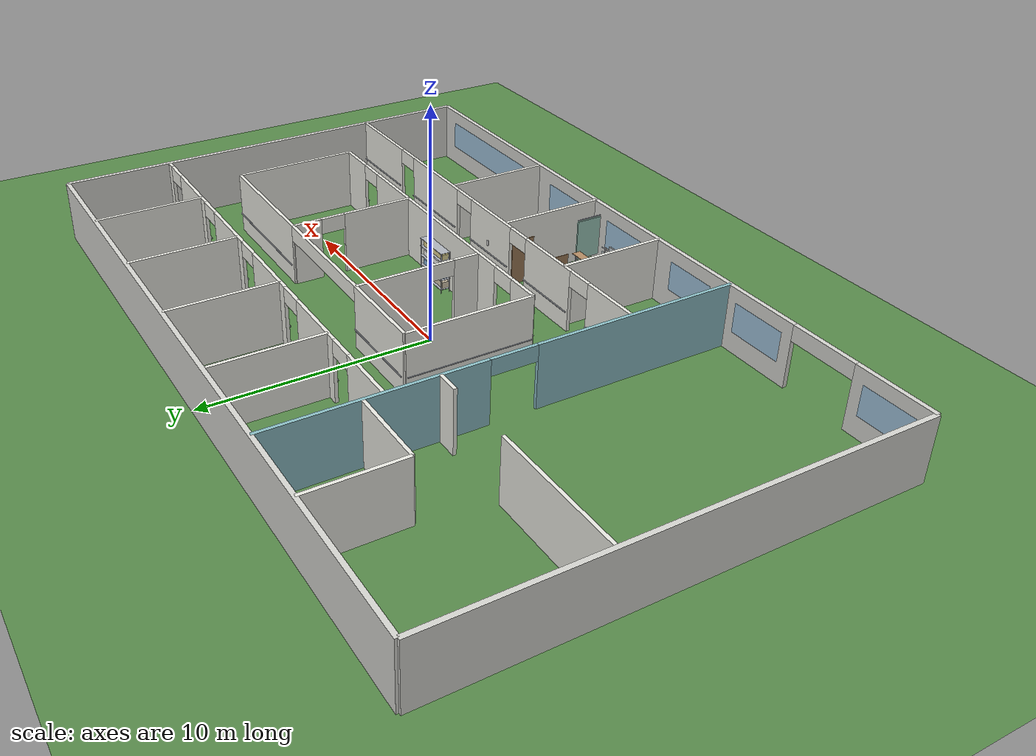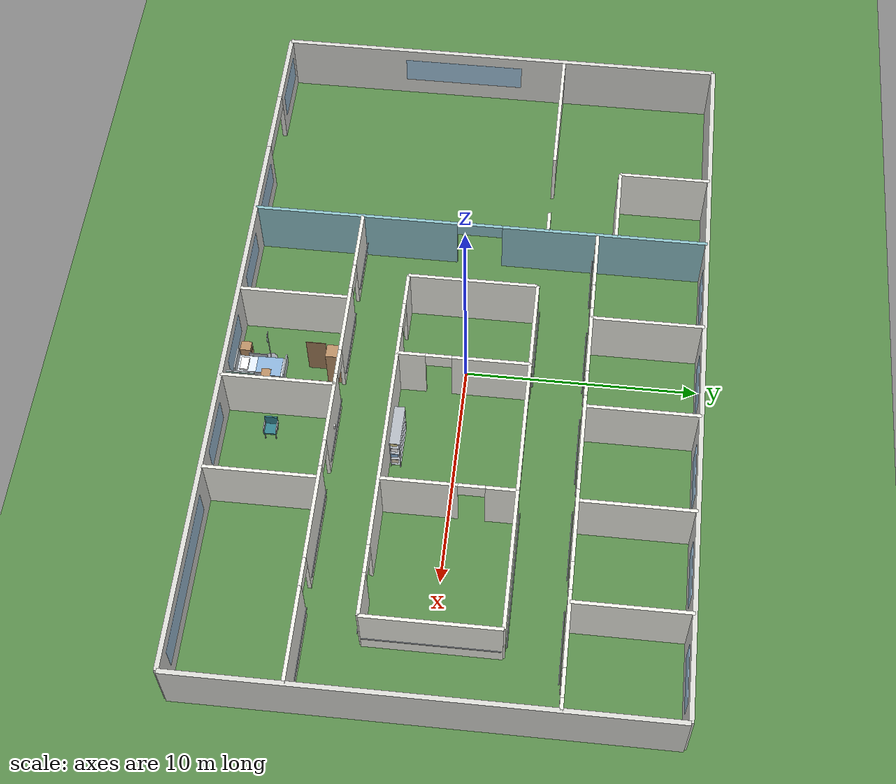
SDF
<sdf version="1.6">
 <world name="hospital">
  <include><uri>model://sun</uri></include>
  <model name="ground_plane">
   <static>true</static>
   <link name="link">
    <collision name="collision">
     <geometry><plane><normal>0 0 1</normal><size>100 100</size></plane></geometry>
     <surface>
      <contact><collide_bitmask>0xffff</collide_bitmask></contact>
      <friction><ode><mu>100</mu><mu2>50</mu2></ode></friction>
     </surface>
    </collision>
    <visual name="visual">
     <cast_shadows>false</cast_shadows>
     <geometry><plane><normal>0 0 1</normal><size>100 100</size></plane></geometry>
     <material>
      <ambient>0.35 0.55 0.3 1</ambient>
      <diffuse>0.35 0.55 0.3 1</diffuse>
      <specular>0 0 0 1</specular>
     </material>
    </visual>
   </link>
  </model>
  <model name="hospital_walls">
   <static>true</static>
   <link name="link">
    <collision name="c0">
     <pose>-14.25 -10 1.4 0 0 0</pose>
     <geometry><box><size>3.5 0.2 2.8</size></box></geometry>
    </collision>
    <visual name="v0">
     <pose>-14.25 -10 1.4 0 0 0</pose>
     <geometry><box><size>3.5 0.2 2.8</size></box></geometry>
     <material>
      <ambient>0.85 0.85 0.83 1</ambient>
      <diffuse>0.85 0.85 0.83 1</diffuse>
      <specular>0.1 0.1 0.1 1</specular>
     </material>
    </visual>
    <collision name="c1">
     <pose>3.25 -10 1.4 0 0 0</pose>
     <geometry><box><size>25.5 0.2 2.8</size></box></geometry>
    </collision>
    <visual name="v1">
     <pose>3.25 -10 1.4 0 0 0</pose>
     <geometry><box><size>25.5 0.2 2.8</size></box></geometry>
     <material>
      <ambient>0.85 0.85 0.83 1</ambient>
      <diffuse>0.85 0.85 0.83 1</diffuse>
      <specular>0.1 0.1 0.1 1</specular>
     </material>
    </visual>
    <visual name="v2">
     <pose>-11 -10 2.45 0 0 0</pose>
     <geometry><box><size>3 0.2 0.7</size></box></geometry>
     <material>
      <ambient>0.85 0.85 0.83 1</ambient>
      <diffuse>0.85 0.85 0.83 1</diffuse>
      <specular>0.1 0.1 0.1 1</specular>
     </material>
    </visual>
    <collision name="c3">
     <pose>0 10 1.4 0 0 0</pose>
     <geometry><box><size>32 0.2 2.8</size></box></geometry>
    </collision>
    <visual name="v3">
     <pose>0 10 1.4 0 0 0</pose>
     <geometry><box><size>32 0.2 2.8</size></box></geometry>
     <material>
      <ambient>0.85 0.85 0.83 1</ambient>
      <diffuse>0.85 0.85 0.83 1</diffuse>
      <specular>0.1 0.1 0.1 1</specular>
     </material>
    </visual>
    <collision name="c4">
     <pose>-16 0 1.4 0 0 0</pose>
     <geometry><box><size>0.2 20 2.8</size></box></geometry>
    </collision>
    <visual name="v4">
     <pose>-16 0 1.4 0 0 0</pose>
     <geometry><box><size>0.2 20 2.8</size></box></geometry>
     <material>
      <ambient>0.85 0.85 0.83 1</ambient>
      <diffuse>0.85 0.85 0.83 1</diffuse>
      <specular>0.1 0.1 0.1 1</specular>
     </material>
    </visual>
    <collision name="c5">
     <pose>16 0 1.4 0 0 0</pose>
     <geometry><box><size>0.2 20 2.8</size></box></geometry>
    </collision>
    <visual name="v5">
     <pose>16 0 1.4 0 0 0</pose>
     <geometry><box><size>0.2 20 2.8</size></box></geometry>
     <material>
      <ambient>0.85 0.85 0.83 1</ambient>
      <diffuse>0.85 0.85 0.83 1</diffuse>
      <specular>0.1 0.1 0.1 1</specular>
     </material>
    </visual>
    <collision name="c6">
     <pose>-13 3 1.4 0 0 0</pose>
     <geometry><box><size>6 0.15 2.8</size></box></geometry>
    </collision>
    <visual name="v6">
     <pose>-13 3 1.4 0 0 0</pose>
     <geometry><box><size>6 0.15 2.8</size></box></geometry>
     <material>
      <ambient>0.93 0.93 0.9 1</ambient>
      <diffuse>0.93 0.93 0.9 1</diffuse>
      <specular>0.1 0.1 0.1 1</specular>
     </material>
    </visual>
    <collision name="c7">
     <pose>-6.5 3 1.4 0 0 0</pose>
     <geometry><box><size>1 0.15 2.8</size></box></geometry>
    </collision>
    <visual name="v7">
     <pose>-6.5 3 1.4 0 0 0</pose>
     <geometry><box><size>1 0.15 2.8</size></box></geometry>
     <material>
      <ambient>0.93 0.93 0.9 1</ambient>
      <diffuse>0.93 0.93 0.9 1</diffuse>
      <specular>0.1 0.1 0.1 1</specular>
     </material>
    </visual>
    <collision name="c8">
     <pose>-9.5 8 1.4 0 0 0</pose>
     <geometry><box><size>0.15 4 2.8</size></box></geometry>
    </collision>
    <visual name="v8">
     <pose>-9.5 8 1.4 0 0 0</pose>
     <geometry><box><size>0.15 4 2.8</size></box></geometry>
     <material>
      <ambient>0.93 0.93 0.9 1</ambient>
      <diffuse>0.93 0.93 0.9 1</diffuse>
      <specular>0.1 0.1 0.1 1</specular>
     </material>
    </visual>
    <collision name="c9">
     <pose>-7.75 6 1.4 0 0 0</pose>
     <geometry><box><size>3.5 0.15 2.8</size></box></geometry>
    </collision>
    <visual name="v9">
     <pose>-7.75 6 1.4 0 0 0</pose>
     <geometry><box><size>3.5 0.15 2.8</size></box></geometry>
     <material>
      <ambient>0.93 0.93 0.9 1</ambient>
      <diffuse>0.93 0.93 0.9 1</diffuse>
      <specular>0.1 0.1 0.1 1</specular>
     </material>
    </visual>
    <collision name="c10">
     <pose>-6 -5.5 1.4 0 0 0</pose>
     <geometry><box><size>0.15 9 2.8</size></box></geometry>
    </collision>
    <visual name="v10">
     <pose>-6 -5.5 1.4 0 0 0</pose>
     <geometry><box><size>0.15 9 2.8</size></box></geometry>
     <material>
      <ambient>0.55 0.75 0.78 1</ambient>
      <diffuse>0.55 0.75 0.78 1</diffuse>
      <specular>0.1 0.1 0.1 1</specular>
     </material>
    </visual>
    <collision name="c11">
     <pose>-6 5.5 1.4 0 0 0</pose>
     <geometry><box><size>0.15 9 2.8</size></box></geometry>
    </collision>
    <visual name="v11">
     <pose>-6 5.5 1.4 0 0 0</pose>
     <geometry><box><size>0.15 9 2.8</size></box></geometry>
     <material>
      <ambient>0.55 0.75 0.78 1</ambient>
      <diffuse>0.55 0.75 0.78 1</diffuse>
      <specular>0.1 0.1 0.1 1</specular>
     </material>
    </visual>
    <visual name="v12">
     <pose>-6 0 2.45 0 0 0</pose>
     <geometry><box><size>0.15 2 0.7</size></box></geometry>
     <material>
      <ambient>0.55 0.75 0.78 1</ambient>
      <diffuse>0.55 0.75 0.78 1</diffuse>
      <specular>0.1 0.1 0.1 1</specular>
     </material>
    </visual>
    <collision name="c13">
     <pose>-4.65 5.2 1.4 0 0 0</pose>
     <geometry><box><size>2.7 0.15 2.8</size></box></geometry>
    </collision>
    <visual name="v13">
     <pose>-4.65 5.2 1.4 0 0 0</pose>
     <geometry><box><size>2.7 0.15 2.8</size></box></geometry>
     <material>
      <ambient>0.93 0.93 0.9 1</ambient>
      <diffuse>0.93 0.93 0.9 1</diffuse>
      <specular>0.1 0.1 0.1 1</specular>
     </material>
    </visual>
    <visual name="v14">
     <pose>-4.65 5.065 0.9 0 1.5708 0</pose>
     <geometry><cylinder><radius>0.025</radius><length>2.6</length></cylinder></geometry>
     <material>
      <ambient>0.7 0.72 0.75 1</ambient>
      <diffuse>0.7 0.72 0.75 1</diffuse>
      <specular>0.1 0.1 0.1 1</specular>
     </material>
    </visual>
    <collision name="c15">
     <pose>-0.5 5.2 1.4 0 0 0</pose>
     <geometry><box><size>3.2 0.15 2.8</size></box></geometry>
    </collision>
    <visual name="v15">
     <pose>-0.5 5.2 1.4 0 0 0</pose>
     <geometry><box><size>3.2 0.15 2.8</size></box></geometry>
     <material>
      <ambient>0.93 0.93 0.9 1</ambient>
      <diffuse>0.93 0.93 0.9 1</diffuse>
      <specular>0.1 0.1 0.1 1</specular>
     </material>
    </visual>
    <visual name="v16">
     <pose>-0.5 5.065 0.9 0 1.5708 0</pose>
     <geometry><cylinder><radius>0.025</radius><length>3.1</length></cylinder></geometry>
     <material>
      <ambient>0.7 0.72 0.75 1</ambient>
      <diffuse>0.7 0.72 0.75 1</diffuse>
      <specular>0.1 0.1 0.1 1</specular>
     </material>
    </visual>
    <collision name="c17">
     <pose>3.9 5.2 1.4 0 0 0</pose>
     <geometry><box><size>3.2 0.15 2.8</size></box></geometry>
    </collision>
    <visual name="v17">
     <pose>3.9 5.2 1.4 0 0 0</pose>
     <geometry><box><size>3.2 0.15 2.8</size></box></geometry>
     <material>
      <ambient>0.93 0.93 0.9 1</ambient>
      <diffuse>0.93 0.93 0.9 1</diffuse>
      <specular>0.1 0.1 0.1 1</specular>
     </material>
    </visual>
    <visual name="v18">
     <pose>3.9 5.065 0.9 0 1.5708 0</pose>
     <geometry><cylinder><radius>0.025</radius><length>3.1</length></cylinder></geometry>
     <material>
      <ambient>0.7 0.72 0.75 1</ambient>
      <diffuse>0.7 0.72 0.75 1</diffuse>
      <specular>0.1 0.1 0.1 1</specular>
     </material>
    </visual>
    <collision name="c19">
     <pose>8.3 5.2 1.4 0 0 0</pose>
     <geometry><box><size>3.2 0.15 2.8</size></box></geometry>
    </collision>
    <visual name="v19">
     <pose>8.3 5.2 1.4 0 0 0</pose>
     <geometry><box><size>3.2 0.15 2.8</size></box></geometry>
     <material>
      <ambient>0.93 0.93 0.9 1</ambient>
      <diffuse>0.93 0.93 0.9 1</diffuse>
      <specular>0.1 0.1 0.1 1</specular>
     </material>
    </visual>
    <visual name="v20">
     <pose>8.3 5.065 0.9 0 1.5708 0</pose>
     <geometry><cylinder><radius>0.025</radius><length>3.1</length></cylinder></geometry>
     <material>
      <ambient>0.7 0.72 0.75 1</ambient>
      <diffuse>0.7 0.72 0.75 1</diffuse>
      <specular>0.1 0.1 0.1 1</specular>
     </material>
    </visual>
    <collision name="c21">
     <pose>12.7 5.2 1.4 0 0 0</pose>
     <geometry><box><size>3.2 0.15 2.8</size></box></geometry>
    </collision>
    <visual name="v21">
     <pose>12.7 5.2 1.4 0 0 0</pose>
     <geometry><box><size>3.2 0.15 2.8</size></box></geometry>
     <material>
      <ambient>0.93 0.93 0.9 1</ambient>
      <diffuse>0.93 0.93 0.9 1</diffuse>
      <specular>0.1 0.1 0.1 1</specular>
     </material>
    </visual>
    <visual name="v22">
     <pose>12.7 5.065 0.9 0 1.5708 0</pose>
     <geometry><cylinder><radius>0.025</radius><length>3.1</length></cylinder></geometry>
     <material>
      <ambient>0.7 0.72 0.75 1</ambient>
      <diffuse>0.7 0.72 0.75 1</diffuse>
      <specular>0.1 0.1 0.1 1</specular>
     </material>
    </visual>
    <collision name="c23">
     <pose>15.75 5.2 1.4 0 0 0</pose>
     <geometry><box><size>0.5 0.15 2.8</size></box></geometry>
    </collision>
    <visual name="v23">
     <pose>15.75 5.2 1.4 0 0 0</pose>
     <geometry><box><size>0.5 0.15 2.8</size></box></geometry>
     <material>
      <ambient>0.93 0.93 0.9 1</ambient>
      <diffuse>0.93 0.93 0.9 1</diffuse>
      <specular>0.1 0.1 0.1 1</specular>
     </material>
    </visual>
    <visual name="v24">
     <pose>15.75 5.065 0.9 0 1.5708 0</pose>
     <geometry><cylinder><radius>0.025</radius><length>0.4</length></cylinder></geometry>
     <material>
      <ambient>0.7 0.72 0.75 1</ambient>
      <diffuse>0.7 0.72 0.75 1</diffuse>
      <specular>0.1 0.1 0.1 1</specular>
     </material>
    </visual>
    <visual name="v25">
     <pose>-2.7 5.2 2.45 0 0 0</pose>
     <geometry><box><size>1.2 0.15 0.7</size></box></geometry>
     <material>
      <ambient>0.93 0.93 0.9 1</ambient>
      <diffuse>0.93 0.93 0.9 1</diffuse>
      <specular>0.1 0.1 0.1 1</specular>
     </material>
    </visual>
    <visual name="v26">
     <pose>1.7 5.2 2.45 0 0 0</pose>
     <geometry><box><size>1.2 0.15 0.7</size></box></geometry>
     <material>
      <ambient>0.93 0.93 0.9 1</ambient>
      <diffuse>0.93 0.93 0.9 1</diffuse>
      <specular>0.1 0.1 0.1 1</specular>
     </material>
    </visual>
    <visual name="v27">
     <pose>6.1 5.2 2.45 0 0 0</pose>
     <geometry><box><size>1.2 0.15 0.7</size></box></geometry>
     <material>
      <ambient>0.93 0.93 0.9 1</ambient>
      <diffuse>0.93 0.93 0.9 1</diffuse>
      <specular>0.1 0.1 0.1 1</specular>
     </material>
    </visual>
    <visual name="v28">
     <pose>10.5 5.2 2.45 0 0 0</pose>
     <geometry><box><size>1.2 0.15 0.7</size></box></geometry>
     <material>
      <ambient>0.93 0.93 0.9 1</ambient>
      <diffuse>0.93 0.93 0.9 1</diffuse>
      <specular>0.1 0.1 0.1 1</specular>
     </material>
    </visual>
    <visual name="v29">
     <pose>14.9 5.2 2.45 0 0 0</pose>
     <geometry><box><size>1.2 0.15 0.7</size></box></geometry>
     <material>
      <ambient>0.93 0.93 0.9 1</ambient>
      <diffuse>0.93 0.93 0.9 1</diffuse>
      <specular>0.1 0.1 0.1 1</specular>
     </material>
    </visual>
    <collision name="c30">
     <pose>-4.65 -5.2 1.4 0 0 0</pose>
     <geometry><box><size>2.7 0.15 2.8</size></box></geometry>
    </collision>
    <visual name="v30">
     <pose>-4.65 -5.2 1.4 0 0 0</pose>
     <geometry><box><size>2.7 0.15 2.8</size></box></geometry>
     <material>
      <ambient>0.93 0.93 0.9 1</ambient>
      <diffuse>0.93 0.93 0.9 1</diffuse>
      <specular>0.1 0.1 0.1 1</specular>
     </material>
    </visual>
    <visual name="v31">
     <pose>-4.65 -5.065 0.9 0 1.5708 0</pose>
     <geometry><cylinder><radius>0.025</radius><length>2.6</length></cylinder></geometry>
     <material>
      <ambient>0.7 0.72 0.75 1</ambient>
      <diffuse>0.7 0.72 0.75 1</diffuse>
      <specular>0.1 0.1 0.1 1</specular>
     </material>
    </visual>
    <collision name="c32">
     <pose>-0.5 -5.2 1.4 0 0 0</pose>
     <geometry><box><size>3.2 0.15 2.8</size></box></geometry>
    </collision>
    <visual name="v32">
     <pose>-0.5 -5.2 1.4 0 0 0</pose>
     <geometry><box><size>3.2 0.15 2.8</size></box></geometry>
     <material>
      <ambient>0.93 0.93 0.9 1</ambient>
      <diffuse>0.93 0.93 0.9 1</diffuse>
      <specular>0.1 0.1 0.1 1</specular>
     </material>
    </visual>
    <visual name="v33">
     <pose>-0.5 -5.065 0.9 0 1.5708 0</pose>
     <geometry><cylinder><radius>0.025</radius><length>3.1</length></cylinder></geometry>
     <material>
      <ambient>0.7 0.72 0.75 1</ambient>
      <diffuse>0.7 0.72 0.75 1</diffuse>
      <specular>0.1 0.1 0.1 1</specular>
     </material>
    </visual>
    <collision name="c34">
     <pose>3.9 -5.2 1.4 0 0 0</pose>
     <geometry><box><size>3.2 0.15 2.8</size></box></geometry>
    </collision>
    <visual name="v34">
     <pose>3.9 -5.2 1.4 0 0 0</pose>
     <geometry><box><size>3.2 0.15 2.8</size></box></geometry>
     <material>
      <ambient>0.93 0.93 0.9 1</ambient>
      <diffuse>0.93 0.93 0.9 1</diffuse>
      <specular>0.1 0.1 0.1 1</specular>
     </material>
    </visual>
    <visual name="v35">
     <pose>3.9 -5.065 0.9 0 1.5708 0</pose>
     <geometry><cylinder><radius>0.025</radius><length>3.1</length></cylinder></geometry>
     <material>
      <ambient>0.7 0.72 0.75 1</ambient>
      <diffuse>0.7 0.72 0.75 1</diffuse>
      <specular>0.1 0.1 0.1 1</specular>
     </material>
    </visual>
    <collision name="c36">
     <pose>8.75 -5.2 1.4 0 0 0</pose>
     <geometry><box><size>4.1 0.15 2.8</size></box></geometry>
    </collision>
    <visual name="v36">
     <pose>8.75 -5.2 1.4 0 0 0</pose>
     <geometry><box><size>4.1 0.15 2.8</size></box></geometry>
     <material>
      <ambient>0.93 0.93 0.9 1</ambient>
      <diffuse>0.93 0.93 0.9 1</diffuse>
      <specular>0.1 0.1 0.1 1</specular>
     </material>
    </visual>
    <visual name="v37">
     <pose>8.75 -5.065 0.9 0 1.5708 0</pose>
     <geometry><cylinder><radius>0.025</radius><length>4</length></cylinder></geometry>
     <material>
      <ambient>0.7 0.72 0.75 1</ambient>
      <diffuse>0.7 0.72 0.75 1</diffuse>
      <specular>0.1 0.1 0.1 1</specular>
     </material>
    </visual>
    <collision name="c38">
     <pose>14 -5.2 1.4 0 0 0</pose>
     <geometry><box><size>4 0.15 2.8</size></box></geometry>
    </collision>
    <visual name="v38">
     <pose>14 -5.2 1.4 0 0 0</pose>
     <geometry><box><size>4 0.15 2.8</size></box></geometry>
     <material>
      <ambient>0.93 0.93 0.9 1</ambient>
      <diffuse>0.93 0.93 0.9 1</diffuse>
      <specular>0.1 0.1 0.1 1</specular>
     </material>
    </visual>
    <visual name="v39">
     <pose>14 -5.065 0.9 0 1.5708 0</pose>
     <geometry><cylinder><radius>0.025</radius><length>3.9</length></cylinder></geometry>
     <material>
      <ambient>0.7 0.72 0.75 1</ambient>
      <diffuse>0.7 0.72 0.75 1</diffuse>
      <specular>0.1 0.1 0.1 1</specular>
     </material>
    </visual>
    <visual name="v40">
     <pose>-2.7 -5.2 2.45 0 0 0</pose>
     <geometry><box><size>1.2 0.15 0.7</size></box></geometry>
     <material>
      <ambient>0.93 0.93 0.9 1</ambient>
      <diffuse>0.93 0.93 0.9 1</diffuse>
      <specular>0.1 0.1 0.1 1</specular>
     </material>
    </visual>
    <visual name="v41">
     <pose>1.7 -5.2 2.45 0 0 0</pose>
     <geometry><box><size>1.2 0.15 0.7</size></box></geometry>
     <material>
      <ambient>0.93 0.93 0.9 1</ambient>
      <diffuse>0.93 0.93 0.9 1</diffuse>
      <specular>0.1 0.1 0.1 1</specular>
     </material>
    </visual>
    <visual name="v42">
     <pose>6.1 -5.2 2.45 0 0 0</pose>
     <geometry><box><size>1.2 0.15 0.7</size></box></geometry>
     <material>
      <ambient>0.93 0.93 0.9 1</ambient>
      <diffuse>0.93 0.93 0.9 1</diffuse>
      <specular>0.1 0.1 0.1 1</specular>
     </material>
    </visual>
    <visual name="v43">
     <pose>11.4 -5.2 2.45 0 0 0</pose>
     <geometry><box><size>1.2 0.15 0.7</size></box></geometry>
     <material>
      <ambient>0.93 0.93 0.9 1</ambient>
      <diffuse>0.93 0.93 0.9 1</diffuse>
      <specular>0.1 0.1 0.1 1</specular>
     </material>
    </visual>
    <collision name="c44">
     <pose>-1.6 7.6 1.4 0 0 0</pose>
     <geometry><box><size>0.15 4.8 2.8</size></box></geometry>
    </collision>
    <visual name="v44">
     <pose>-1.6 7.6 1.4 0 0 0</pose>
     <geometry><box><size>0.15 4.8 2.8</size></box></geometry>
     <material>
      <ambient>0.93 0.93 0.9 1</ambient>
      <diffuse>0.93 0.93 0.9 1</diffuse>
      <specular>0.1 0.1 0.1 1</specular>
     </material>
    </visual>
    <collision name="c45">
     <pose>2.8 7.6 1.4 0 0 0</pose>
     <geometry><box><size>0.15 4.8 2.8</size></box></geometry>
    </collision>
    <visual name="v45">
     <pose>2.8 7.6 1.4 0 0 0</pose>
     <geometry><box><size>0.15 4.8 2.8</size></box></geometry>
     <material>
      <ambient>0.93 0.93 0.9 1</ambient>
      <diffuse>0.93 0.93 0.9 1</diffuse>
      <specular>0.1 0.1 0.1 1</specular>
     </material>
    </visual>
    <collision name="c46">
     <pose>7.2 7.6 1.4 0 0 0</pose>
     <geometry><box><size>0.15 4.8 2.8</size></box></geometry>
    </collision>
    <visual name="v46">
     <pose>7.2 7.6 1.4 0 0 0</pose>
     <geometry><box><size>0.15 4.8 2.8</size></box></geometry>
     <material>
      <ambient>0.93 0.93 0.9 1</ambient>
      <diffuse>0.93 0.93 0.9 1</diffuse>
      <specular>0.1 0.1 0.1 1</specular>
     </material>
    </visual>
    <collision name="c47">
     <pose>11.6 7.6 1.4 0 0 0</pose>
     <geometry><box><size>0.15 4.8 2.8</size></box></geometry>
    </collision>
    <visual name="v47">
     <pose>11.6 7.6 1.4 0 0 0</pose>
     <geometry><box><size>0.15 4.8 2.8</size></box></geometry>
     <material>
      <ambient>0.93 0.93 0.9 1</ambient>
      <diffuse>0.93 0.93 0.9 1</diffuse>
      <specular>0.1 0.1 0.1 1</specular>
     </material>
    </visual>
    <collision name="c48">
     <pose>-1.6 -7.6 1.4 0 0 0</pose>
     <geometry><box><size>0.15 4.8 2.8</size></box></geometry>
    </collision>
    <visual name="v48">
     <pose>-1.6 -7.6 1.4 0 0 0</pose>
     <geometry><box><size>0.15 4.8 2.8</size></box></geometry>
     <material>
      <ambient>0.93 0.93 0.9 1</ambient>
      <diffuse>0.93 0.93 0.9 1</diffuse>
      <specular>0.1 0.1 0.1 1</specular>
     </material>
    </visual>
    <collision name="c49">
     <pose>2.8 -7.6 1.4 0 0 0</pose>
     <geometry><box><size>0.15 4.8 2.8</size></box></geometry>
    </collision>
    <visual name="v49">
     <pose>2.8 -7.6 1.4 0 0 0</pose>
     <geometry><box><size>0.15 4.8 2.8</size></box></geometry>
     <material>
      <ambient>0.93 0.93 0.9 1</ambient>
      <diffuse>0.93 0.93 0.9 1</diffuse>
      <specular>0.1 0.1 0.1 1</specular>
     </material>
    </visual>
    <collision name="c50">
     <pose>7.2 -7.6 1.4 0 0 0</pose>
     <geometry><box><size>0.15 4.8 2.8</size></box></geometry>
    </collision>
    <visual name="v50">
     <pose>7.2 -7.6 1.4 0 0 0</pose>
     <geometry><box><size>0.15 4.8 2.8</size></box></geometry>
     <material>
      <ambient>0.93 0.93 0.9 1</ambient>
      <diffuse>0.93 0.93 0.9 1</diffuse>
      <specular>0.1 0.1 0.1 1</specular>
     </material>
    </visual>
    <collision name="c51">
     <pose>-1 2.8 1.4 0 0 0</pose>
     <geometry><box><size>4 0.15 2.8</size></box></geometry>
    </collision>
    <visual name="v51">
     <pose>-1 2.8 1.4 0 0 0</pose>
     <geometry><box><size>4 0.15 2.8</size></box></geometry>
     <material>
      <ambient>0.93 0.93 0.9 1</ambient>
      <diffuse>0.93 0.93 0.9 1</diffuse>
      <specular>0.1 0.1 0.1 1</specular>
     </material>
    </visual>
    <visual name="v52">
     <pose>-1 2.935 0.9 0 1.5708 0</pose>
     <geometry><cylinder><radius>0.025</radius><length>3.9</length></cylinder></geometry>
     <material>
      <ambient>0.7 0.72 0.75 1</ambient>
      <diffuse>0.7 0.72 0.75 1</diffuse>
      <specular>0.1 0.1 0.1 1</specular>
     </material>
    </visual>
    <collision name="c53">
     <pose>10 2.8 1.4 0 0 0</pose>
     <geometry><box><size>6 0.15 2.8</size></box></geometry>
    </collision>
    <visual name="v53">
     <pose>10 2.8 1.4 0 0 0</pose>
     <geometry><box><size>6 0.15 2.8</size></box></geometry>
     <material>
      <ambient>0.93 0.93 0.9 1</ambient>
      <diffuse>0.93 0.93 0.9 1</diffuse>
      <specular>0.1 0.1 0.1 1</specular>
     </material>
    </visual>
    <visual name="v54">
     <pose>10 2.935 0.9 0 1.5708 0</pose>
     <geometry><cylinder><radius>0.025</radius><length>5.9</length></cylinder></geometry>
     <material>
      <ambient>0.7 0.72 0.75 1</ambient>
      <diffuse>0.7 0.72 0.75 1</diffuse>
      <specular>0.1 0.1 0.1 1</specular>
     </material>
    </visual>
    <visual name="v55">
     <pose>4 2.8 2.45 0 0 0</pose>
     <geometry><box><size>6 0.15 0.7</size></box></geometry>
     <material>
      <ambient>0.93 0.93 0.9 1</ambient>
      <diffuse>0.93 0.93 0.9 1</diffuse>
      <specular>0.1 0.1 0.1 1</specular>
     </material>
    </visual>
    <collision name="c56">
     <pose>-2.25 -2.8 1.4 0 0 0</pose>
     <geometry><box><size>1.5 0.15 2.8</size></box></geometry>
    </collision>
    <visual name="v56">
     <pose>-2.25 -2.8 1.4 0 0 0</pose>
     <geometry><box><size>1.5 0.15 2.8</size></box></geometry>
     <material>
      <ambient>0.93 0.93 0.9 1</ambient>
      <diffuse>0.93 0.93 0.9 1</diffuse>
      <specular>0.1 0.1 0.1 1</specular>
     </material>
    </visual>
    <visual name="v57">
     <pose>-2.25 -2.935 0.9 0 1.5708 0</pose>
     <geometry><cylinder><radius>0.025</radius><length>1.4</length></cylinder></geometry>
     <material>
      <ambient>0.7 0.72 0.75 1</ambient>
      <diffuse>0.7 0.72 0.75 1</diffuse>
      <specular>0.1 0.1 0.1 1</specular>
     </material>
    </visual>
    <collision name="c58">
     <pose>4.85 -2.8 1.4 0 0 0</pose>
     <geometry><box><size>10.3 0.15 2.8</size></box></geometry>
    </collision>
    <visual name="v58">
     <pose>4.85 -2.8 1.4 0 0 0</pose>
     <geometry><box><size>10.3 0.15 2.8</size></box></geometry>
     <material>
      <ambient>0.93 0.93 0.9 1</ambient>
      <diffuse>0.93 0.93 0.9 1</diffuse>
      <specular>0.1 0.1 0.1 1</specular>
     </material>
    </visual>
    <visual name="v59">
     <pose>4.85 -2.935 0.9 0 1.5708 0</pose>
     <geometry><cylinder><radius>0.025</radius><length>10.2</length></cylinder></geometry>
     <material>
      <ambient>0.7 0.72 0.75 1</ambient>
      <diffuse>0.7 0.72 0.75 1</diffuse>
      <specular>0.1 0.1 0.1 1</specular>
     </material>
    </visual>
    <collision name="c60">
     <pose>12.1 -2.8 1.4 0 0 0</pose>
     <geometry><box><size>1.8 0.15 2.8</size></box></geometry>
    </collision>
    <visual name="v60">
     <pose>12.1 -2.8 1.4 0 0 0</pose>
     <geometry><box><size>1.8 0.15 2.8</size></box></geometry>
     <material>
      <ambient>0.93 0.93 0.9 1</ambient>
      <diffuse>0.93 0.93 0.9 1</diffuse>
      <specular>0.1 0.1 0.1 1</specular>
     </material>
    </visual>
    <visual name="v61">
     <pose>12.1 -2.935 0.9 0 1.5708 0</pose>
     <geometry><cylinder><radius>0.025</radius><length>1.7</length></cylinder></geometry>
     <material>
      <ambient>0.7 0.72 0.75 1</ambient>
      <diffuse>0.7 0.72 0.75 1</diffuse>
      <specular>0.1 0.1 0.1 1</specular>
     </material>
    </visual>
    <visual name="v62">
     <pose>-0.9 -2.8 2.45 0 0 0</pose>
     <geometry><box><size>1.2 0.15 0.7</size></box></geometry>
     <material>
      <ambient>0.93 0.93 0.9 1</ambient>
      <diffuse>0.93 0.93 0.9 1</diffuse>
      <specular>0.1 0.1 0.1 1</specular>
     </material>
    </visual>
    <visual name="v63">
     <pose>10.6 -2.8 2.45 0 0 0</pose>
     <geometry><box><size>1.2 0.15 0.7</size></box></geometry>
     <material>
      <ambient>0.93 0.93 0.9 1</ambient>
      <diffuse>0.93 0.93 0.9 1</diffuse>
      <specular>0.1 0.1 0.1 1</specular>
     </material>
    </visual>
    <collision name="c64">
     <pose>-3 0 1.4 0 0 0</pose>
     <geometry><box><size>0.15 5.6 2.8</size></box></geometry>
    </collision>
    <visual name="v64">
     <pose>-3 0 1.4 0 0 0</pose>
     <geometry><box><size>0.15 5.6 2.8</size></box></geometry>
     <material>
      <ambient>0.93 0.93 0.9 1</ambient>
      <diffuse>0.93 0.93 0.9 1</diffuse>
      <specular>0.1 0.1 0.1 1</specular>
     </material>
    </visual>
    <visual name="v65">
     <pose>-3.135 0 0.9 1.5708 0 0</pose>
     <geometry><cylinder><radius>0.025</radius><length>5.5</length></cylinder></geometry>
     <material>
      <ambient>0.7 0.72 0.75 1</ambient>
      <diffuse>0.7 0.72 0.75 1</diffuse>
      <specular>0.1 0.1 0.1 1</specular>
     </material>
    </visual>
    <collision name="c66">
     <pose>13 0 1.4 0 0 0</pose>
     <geometry><box><size>0.15 5.6 2.8</size></box></geometry>
    </collision>
    <visual name="v66">
     <pose>13 0 1.4 0 0 0</pose>
     <geometry><box><size>0.15 5.6 2.8</size></box></geometry>
     <material>
      <ambient>0.93 0.93 0.9 1</ambient>
      <diffuse>0.93 0.93 0.9 1</diffuse>
      <specular>0.1 0.1 0.1 1</specular>
     </material>
    </visual>
    <visual name="v67">
     <pose>13.135 0 0.9 1.5708 0 0</pose>
     <geometry><cylinder><radius>0.025</radius><length>5.5</length></cylinder></geometry>
     <material>
      <ambient>0.7 0.72 0.75 1</ambient>
      <diffuse>0.7 0.72 0.75 1</diffuse>
      <specular>0.1 0.1 0.1 1</specular>
     </material>
    </visual>
    <collision name="c68">
     <pose>1 -2.2 1.4 0 0 0</pose>
     <geometry><box><size>0.15 1.2 2.8</size></box></geometry>
    </collision>
    <visual name="v68">
     <pose>1 -2.2 1.4 0 0 0</pose>
     <geometry><box><size>0.15 1.2 2.8</size></box></geometry>
     <material>
      <ambient>0.93 0.93 0.9 1</ambient>
      <diffuse>0.93 0.93 0.9 1</diffuse>
      <specular>0.1 0.1 0.1 1</specular>
     </material>
    </visual>
    <collision name="c69">
     <pose>1 1.15 1.4 0 0 0</pose>
     <geometry><box><size>0.15 3.3 2.8</size></box></geometry>
    </collision>
    <visual name="v69">
     <pose>1 1.15 1.4 0 0 0</pose>
     <geometry><box><size>0.15 3.3 2.8</size></box></geometry>
     <material>
      <ambient>0.93 0.93 0.9 1</ambient>
      <diffuse>0.93 0.93 0.9 1</diffuse>
      <specular>0.1 0.1 0.1 1</specular>
     </material>
    </visual>
    <visual name="v70">
     <pose>1 -1.05 2.45 0 0 0</pose>
     <geometry><box><size>0.15 1.1 0.7</size></box></geometry>
     <material>
      <ambient>0.93 0.93 0.9 1</ambient>
      <diffuse>0.93 0.93 0.9 1</diffuse>
      <specular>0.1 0.1 0.1 1</specular>
     </material>
    </visual>
    <collision name="c71">
     <pose>7 -1.2 1.4 0 0 0</pose>
     <geometry><box><size>0.15 3.2 2.8</size></box></geometry>
    </collision>
    <visual name="v71">
     <pose>7 -1.2 1.4 0 0 0</pose>
     <geometry><box><size>0.15 3.2 2.8</size></box></geometry>
     <material>
      <ambient>0.93 0.93 0.9 1</ambient>
      <diffuse>0.93 0.93 0.9 1</diffuse>
      <specular>0.1 0.1 0.1 1</specular>
     </material>
    </visual>
    <collision name="c72">
     <pose>7 2.15 1.4 0 0 0</pose>
     <geometry><box><size>0.15 1.3 2.8</size></box></geometry>
    </collision>
    <visual name="v72">
     <pose>7 2.15 1.4 0 0 0</pose>
     <geometry><box><size>0.15 1.3 2.8</size></box></geometry>
     <material>
      <ambient>0.93 0.93 0.9 1</ambient>
      <diffuse>0.93 0.93 0.9 1</diffuse>
      <specular>0.1 0.1 0.1 1</specular>
     </material>
    </visual>
    <visual name="v73">
     <pose>7 0.95 2.45 0 0 0</pose>
     <geometry><box><size>0.15 1.1 0.7</size></box></geometry>
     <material>
      <ambient>0.93 0.93 0.9 1</ambient>
      <diffuse>0.93 0.93 0.9 1</diffuse>
      <specular>0.1 0.1 0.1 1</specular>
     </material>
    </visual>
    <visual name="v74">
     <pose>-3.8 9.895 1.55 0 0 0</pose>
     <geometry><box><size>2.4 0.01 1.3</size></box></geometry>
     <material>
      <ambient>0.65 0.82 0.95 0.8</ambient>
      <diffuse>0.65 0.82 0.95 0.8</diffuse>
      <specular>0.1 0.1 0.1 1</specular>
     </material>
    </visual>
    <visual name="v75">
     <pose>0.6 9.895 1.55 0 0 0</pose>
     <geometry><box><size>2.4 0.01 1.3</size></box></geometry>
     <material>
      <ambient>0.65 0.82 0.95 0.8</ambient>
      <diffuse>0.65 0.82 0.95 0.8</diffuse>
      <specular>0.1 0.1 0.1 1</specular>
     </material>
    </visual>
    <visual name="v76">
     <pose>5 9.895 1.55 0 0 0</pose>
     <geometry><box><size>2.4 0.01 1.3</size></box></geometry>
     <material>
      <ambient>0.65 0.82 0.95 0.8</ambient>
      <diffuse>0.65 0.82 0.95 0.8</diffuse>
      <specular>0.1 0.1 0.1 1</specular>
     </material>
    </visual>
    <visual name="v77">
     <pose>9.4 9.895 1.55 0 0 0</pose>
     <geometry><box><size>2.4 0.01 1.3</size></box></geometry>
     <material>
      <ambient>0.65 0.82 0.95 0.8</ambient>
      <diffuse>0.65 0.82 0.95 0.8</diffuse>
      <specular>0.1 0.1 0.1 1</specular>
     </material>
    </visual>
    <visual name="v78">
     <pose>13.8 9.895 1.55 0 0 0</pose>
     <geometry><box><size>2.4 0.01 1.3</size></box></geometry>
     <material>
      <ambient>0.65 0.82 0.95 0.8</ambient>
      <diffuse>0.65 0.82 0.95 0.8</diffuse>
      <specular>0.1 0.1 0.1 1</specular>
     </material>
    </visual>
    <visual name="v79">
     <pose>-3.8 -9.895 1.55 0 0 0</pose>
     <geometry><box><size>2.4 0.01 1.3</size></box></geometry>
     <material>
      <ambient>0.65 0.82 0.95 0.8</ambient>
      <diffuse>0.65 0.82 0.95 0.8</diffuse>
      <specular>0.1 0.1 0.1 1</specular>
     </material>
    </visual>
    <visual name="v80">
     <pose>0.6 -9.895 1.55 0 0 0</pose>
     <geometry><box><size>2.4 0.01 1.3</size></box></geometry>
     <material>
      <ambient>0.65 0.82 0.95 0.8</ambient>
      <diffuse>0.65 0.82 0.95 0.8</diffuse>
      <specular>0.1 0.1 0.1 1</specular>
     </material>
    </visual>
    <visual name="v81">
     <pose>5 -9.895 1.55 0 0 0</pose>
     <geometry><box><size>2.4 0.01 1.3</size></box></geometry>
     <material>
      <ambient>0.65 0.82 0.95 0.8</ambient>
      <diffuse>0.65 0.82 0.95 0.8</diffuse>
      <specular>0.1 0.1 0.1 1</specular>
     </material>
    </visual>
    <visual name="v82">
     <pose>11.6 -9.895 1.55 0 0 0</pose>
     <geometry><box><size>6.8 0.01 1.3</size></box></geometry>
     <material>
      <ambient>0.65 0.82 0.95 0.8</ambient>
      <diffuse>0.65 0.82 0.95 0.8</diffuse>
      <specular>0.1 0.1 0.1 1</specular>
     </material>
    </visual>
    <visual name="v83">
     <pose>-14.25 -9.895 1.55 0 0 0</pose>
     <geometry><box><size>2.5 0.01 1.3</size></box></geometry>
     <material>
      <ambient>0.65 0.82 0.95 0.8</ambient>
      <diffuse>0.65 0.82 0.95 0.8</diffuse>
      <specular>0.1 0.1 0.1 1</specular>
     </material>
    </visual>
    <visual name="v84">
     <pose>-7.75 -9.895 1.55 0 0 0</pose>
     <geometry><box><size>2.5 0.01 1.3</size></box></geometry>
     <material>
      <ambient>0.65 0.82 0.95 0.8</ambient>
      <diffuse>0.65 0.82 0.95 0.8</diffuse>
      <specular>0.1 0.1 0.1 1</specular>
     </material>
    </visual>
    <visual name="v85">
     <pose>-15.895 -1.75 1.55 0 0 0</pose>
     <geometry><box><size>0.01 5.5 1.3</size></box></geometry>
     <material>
      <ambient>0.65 0.82 0.95 0.8</ambient>
      <diffuse>0.65 0.82 0.95 0.8</diffuse>
      <specular>0.1 0.1 0.1 1</specular>
     </material>
    </visual>
   </link>
  </model>
  <model name="bathroom_door_S2">
   <static>true</static>
   <pose>0.36 -6.4 0 0 0 1.5708</pose>
   <link name="link">
    <visual name="v0">
     <pose>0 0 1 0 0 0</pose>
     <geometry><box><size>0.85 0.02 2</size></box></geometry>
     <material>
      <ambient>0.62 0.48 0.34 1</ambient>
      <diffuse>0.62 0.48 0.34 1</diffuse>
      <specular>0.1 0.1 0.1 1</specular>
     </material>
    </visual>
   </link>
  </model>
  <model name="door_S2">
   <static>true</static>
   <pose>2.3 -5.83 0 0 0 0</pose>
   <link name="link">
    <collision name="c0">
     <pose>0 0 1.04 0 0 0</pose>
     <geometry><box><size>0.045 1.1 2.08</size></box></geometry>
    </collision>
    <visual name="v0">
     <pose>0 0 1.04 0 0 0</pose>
     <geometry><box><size>0.045 1.1 2.08</size></box></geometry>
     <material>
      <ambient>0.62 0.48 0.34 1</ambient>
      <diffuse>0.62 0.48 0.34 1</diffuse>
      <specular>0.1 0.1 0.1 1</specular>
     </material>
    </visual>
   </link>
  </model>
  <model name="wardrobe_S2">
   <static>true</static>
   <pose>0.7 -5.6 0 0 0 6.2832</pose>
   <link name="link">
    <collision name="c0">
     <pose>0 0 1 0 0 0</pose>
     <geometry><box><size>0.6 0.6 2</size></box></geometry>
    </collision>
    <visual name="v0">
     <pose>0 0 1 0 0 0</pose>
     <geometry><box><size>0.6 0.6 2</size></box></geometry>
     <material>
      <ambient>0.72 0.56 0.4 1</ambient>
      <diffuse>0.72 0.56 0.4 1</diffuse>
      <specular>0.1 0.1 0.1 1</specular>
     </material>
    </visual>
    <visual name="v1">
     <pose>0 -0.301 1.025 0 0 0</pose>
     <geometry><box><size>0.02 0.005 0.25</size></box></geometry>
     <material>
      <ambient>0.6 0.62 0.65 1</ambient>
      <diffuse>0.6 0.62 0.65 1</diffuse>
      <specular>0.1 0.1 0.1 1</specular>
     </material>
    </visual>
   </link>
  </model>
  <model name="bed_S2">
   <static>true</static>
   <pose>0.9 -8.8 0 0 0 3.1416</pose>
   <link name="link">
    <collision name="c0">
     <pose>-0.38 -0.85 0.075 0 0 0</pose>
     <geometry><cylinder><radius>0.05</radius><length>0.15</length></cylinder></geometry>
    </collision>
    <visual name="v0">
     <pose>-0.38 -0.85 0.075 0 0 0</pose>
     <geometry><cylinder><radius>0.05</radius><length>0.15</length></cylinder></geometry>
     <material>
      <ambient>0.15 0.15 0.17 1</ambient>
      <diffuse>0.15 0.15 0.17 1</diffuse>
      <specular>0.1 0.1 0.1 1</specular>
     </material>
    </visual>
    <collision name="c1">
     <pose>-0.38 0.85 0.075 0 0 0</pose>
     <geometry><cylinder><radius>0.05</radius><length>0.15</length></cylinder></geometry>
    </collision>
    <visual name="v1">
     <pose>-0.38 0.85 0.075 0 0 0</pose>
     <geometry><cylinder><radius>0.05</radius><length>0.15</length></cylinder></geometry>
     <material>
      <ambient>0.15 0.15 0.17 1</ambient>
      <diffuse>0.15 0.15 0.17 1</diffuse>
      <specular>0.1 0.1 0.1 1</specular>
     </material>
    </visual>
    <collision name="c2">
     <pose>0.38 -0.85 0.075 0 0 0</pose>
     <geometry><cylinder><radius>0.05</radius><length>0.15</length></cylinder></geometry>
    </collision>
    <visual name="v2">
     <pose>0.38 -0.85 0.075 0 0 0</pose>
     <geometry><cylinder><radius>0.05</radius><length>0.15</length></cylinder></geometry>
     <material>
      <ambient>0.15 0.15 0.17 1</ambient>
      <diffuse>0.15 0.15 0.17 1</diffuse>
      <specular>0.1 0.1 0.1 1</specular>
     </material>
    </visual>
    <collision name="c3">
     <pose>0.38 0.85 0.075 0 0 0</pose>
     <geometry><cylinder><radius>0.05</radius><length>0.15</length></cylinder></geometry>
    </collision>
    <visual name="v3">
     <pose>0.38 0.85 0.075 0 0 0</pose>
     <geometry><cylinder><radius>0.05</radius><length>0.15</length></cylinder></geometry>
     <material>
      <ambient>0.15 0.15 0.17 1</ambient>
      <diffuse>0.15 0.15 0.17 1</diffuse>
      <specular>0.1 0.1 0.1 1</specular>
     </material>
    </visual>
    <collision name="c4">
     <pose>0 0 0.3 0 0 0</pose>
     <geometry><box><size>0.9 1.9 0.3</size></box></geometry>
    </collision>
    <visual name="v4">
     <pose>0 0 0.3 0 0 0</pose>
     <geometry><box><size>0.9 1.9 0.3</size></box></geometry>
     <material>
      <ambient>0.6 0.62 0.65 1</ambient>
      <diffuse>0.6 0.62 0.65 1</diffuse>
      <specular>0.1 0.1 0.1 1</specular>
     </material>
    </visual>
    <visual name="v5">
     <pose>0 0 0.535 0 0 0</pose>
     <geometry><box><size>0.9 2 0.17</size></box></geometry>
     <material>
      <ambient>0.88 0.92 0.96 1</ambient>
      <diffuse>0.88 0.92 0.96 1</diffuse>
      <specular>0.1 0.1 0.1 1</specular>
     </material>
    </visual>
    <collision name="c6">
     <pose>0 1.05 0.7 0 0 0</pose>
     <geometry><box><size>1 0.06 0.8</size></box></geometry>
    </collision>
    <visual name="v6">
     <pose>0 1.05 0.7 0 0 0</pose>
     <geometry><box><size>1 0.06 0.8</size></box></geometry>
     <material>
      <ambient>0.75 0.78 0.8 1</ambient>
      <diffuse>0.75 0.78 0.8 1</diffuse>
      <specular>0.1 0.1 0.1 1</specular>
     </material>
    </visual>
    <collision name="c7">
     <pose>0 -1.05 0.6 0 0 0</pose>
     <geometry><box><size>1 0.06 0.6</size></box></geometry>
    </collision>
    <visual name="v7">
     <pose>0 -1.05 0.6 0 0 0</pose>
     <geometry><box><size>1 0.06 0.6</size></box></geometry>
     <material>
      <ambient>0.75 0.78 0.8 1</ambient>
      <diffuse>0.75 0.78 0.8 1</diffuse>
      <specular>0.1 0.1 0.1 1</specular>
     </material>
    </visual>
    <visual name="v8">
     <pose>0 0.72 0.68 0 0 0</pose>
     <geometry><box><size>0.6 0.35 0.12</size></box></geometry>
     <material>
      <ambient>0.97 0.97 0.97 1</ambient>
      <diffuse>0.97 0.97 0.97 1</diffuse>
      <specular>0.1 0.1 0.1 1</specular>
     </material>
    </visual>
    <visual name="v9">
     <pose>0 -0.35 0.635 0 0 0</pose>
     <geometry><box><size>0.92 1.1 0.03</size></box></geometry>
     <material>
      <ambient>0.55 0.7 0.85 1</ambient>
      <diffuse>0.55 0.7 0.85 1</diffuse>
      <specular>0.1 0.1 0.1 1</specular>
     </material>
    </visual>
    <visual name="v10">
     <pose>-0.47 0.2 0.73 0 0 0</pose>
     <geometry><box><size>0.03 0.8 0.22</size></box></geometry>
     <material>
      <ambient>0.7 0.72 0.75 1</ambient>
      <diffuse>0.7 0.72 0.75 1</diffuse>
      <specular>0.1 0.1 0.1 1</specular>
     </material>
    </visual>
    <visual name="v11">
     <pose>0.47 0.2 0.73 0 0 0</pose>
     <geometry><box><size>0.03 0.8 0.22</size></box></geometry>
     <material>
      <ambient>0.7 0.72 0.75 1</ambient>
      <diffuse>0.7 0.72 0.75 1</diffuse>
      <specular>0.1 0.1 0.1 1</specular>
     </material>
    </visual>
   </link>
  </model>
  <model name="bedside_cabinet_S2">
   <static>true</static>
   <pose>0.05 -9.6 0 0 0 3.1416</pose>
   <link name="link">
    <collision name="c0">
     <pose>0 0 0.4 0 0 0</pose>
     <geometry><box><size>0.45 0.45 0.8</size></box></geometry>
    </collision>
    <visual name="v0">
     <pose>0 0 0.4 0 0 0</pose>
     <geometry><box><size>0.45 0.45 0.8</size></box></geometry>
     <material>
      <ambient>0.72 0.56 0.4 1</ambient>
      <diffuse>0.72 0.56 0.4 1</diffuse>
      <specular>0.1 0.1 0.1 1</specular>
     </material>
    </visual>
    <visual name="v1">
     <pose>0 -0.226 0.51 0 0 0</pose>
     <geometry><box><size>0.35 0.005 0.12</size></box></geometry>
     <material>
      <ambient>0.6 0.45 0.32 1</ambient>
      <diffuse>0.6 0.45 0.32 1</diffuse>
      <specular>0.1 0.1 0.1 1</specular>
     </material>
    </visual>
   </link>
  </model>
  <model name="iv_stand_S2">
   <static>true</static>
   <pose>0.1 -8.55 0 0 0 0</pose>
   <link name="link">
    <collision name="c0">
     <pose>0 0 0.015 0 0 0</pose>
     <geometry><cylinder><radius>0.28</radius><length>0.03</length></cylinder></geometry>
    </collision>
    <visual name="v0">
     <pose>0 0 0.015 0 0 0</pose>
     <geometry><cylinder><radius>0.28</radius><length>0.03</length></cylinder></geometry>
     <material>
      <ambient>0.6 0.62 0.65 1</ambient>
      <diffuse>0.6 0.62 0.65 1</diffuse>
      <specular>0.1 0.1 0.1 1</specular>
     </material>
    </visual>
    <collision name="c1">
     <pose>0 0 0.98 0 0 0</pose>
     <geometry><cylinder><radius>0.015</radius><length>1.9</length></cylinder></geometry>
    </collision>
    <visual name="v1">
     <pose>0 0 0.98 0 0 0</pose>
     <geometry><cylinder><radius>0.015</radius><length>1.9</length></cylinder></geometry>
     <material>
      <ambient>0.7 0.72 0.75 1</ambient>
      <diffuse>0.7 0.72 0.75 1</diffuse>
      <specular>0.1 0.1 0.1 1</specular>
     </material>
    </visual>
    <visual name="v2">
     <pose>0 0 1.91 0 0 0</pose>
     <geometry><box><size>0.4 0.02 0.02</size></box></geometry>
     <material>
      <ambient>0.7 0.72 0.75 1</ambient>
      <diffuse>0.7 0.72 0.75 1</diffuse>
      <specular>0.1 0.1 0.1 1</specular>
     </material>
    </visual>
    <visual name="v3">
     <pose>0.12 0 1.64 0 0 0</pose>
     <geometry><box><size>0.1 0.03 0.18</size></box></geometry>
     <material>
      <ambient>0.85 0.92 0.95 0.7</ambient>
      <diffuse>0.85 0.92 0.95 0.7</diffuse>
      <specular>0.1 0.1 0.1 1</specular>
     </material>
    </visual>
   </link>
  </model>
  <model name="overbed_table_S2">
   <static>true</static>
   <pose>1.65 -8.5 0 0 0 0</pose>
   <link name="link">
    <collision name="c0">
     <pose>0.15 0 0.025 0 0 0</pose>
     <geometry><box><size>0.55 0.4 0.05</size></box></geometry>
    </collision>
    <visual name="v0">
     <pose>0.15 0 0.025 0 0 0</pose>
     <geometry><box><size>0.55 0.4 0.05</size></box></geometry>
     <material>
      <ambient>0.6 0.62 0.65 1</ambient>
      <diffuse>0.6 0.62 0.65 1</diffuse>
      <specular>0.1 0.1 0.1 1</specular>
     </material>
    </visual>
    <collision name="c1">
     <pose>0.35 0 0.45 0 0 0</pose>
     <geometry><box><size>0.05 0.05 0.8</size></box></geometry>
    </collision>
    <visual name="v1">
     <pose>0.35 0 0.45 0 0 0</pose>
     <geometry><box><size>0.05 0.05 0.8</size></box></geometry>
     <material>
      <ambient>0.7 0.72 0.75 1</ambient>
      <diffuse>0.7 0.72 0.75 1</diffuse>
      <specular>0.1 0.1 0.1 1</specular>
     </material>
    </visual>
    <visual name="v2">
     <pose>-0.05 0 0.865 0 0 0</pose>
     <geometry><box><size>0.85 0.4 0.03</size></box></geometry>
     <material>
      <ambient>0.72 0.56 0.4 1</ambient>
      <diffuse>0.72 0.56 0.4 1</diffuse>
      <specular>0.1 0.1 0.1 1</specular>
     </material>
    </visual>
   </link>
  </model>
  <model name="curtain_S2">
   <static>true</static>
   <pose>2.3 -9.3 0 0 0 0</pose>
   <link name="link">
    <collision name="c0">
     <pose>0 0 1.275 0 0 0</pose>
     <geometry><box><size>0.06 1.2 1.85</size></box></geometry>
    </collision>
    <visual name="v0">
     <pose>0 0 1.275 0 0 0</pose>
     <geometry><box><size>0.06 1.2 1.85</size></box></geometry>
     <material>
      <ambient>0.62 0.8 0.74 1</ambient>
      <diffuse>0.62 0.8 0.74 1</diffuse>
      <specular>0.1 0.1 0.1 1</specular>
     </material>
    </visual>
    <visual name="v1">
     <pose>0 0 2.265 0 0 0</pose>
     <geometry><box><size>0.06 1.2 0.03</size></box></geometry>
     <material>
      <ambient>0.7 0.72 0.75 1</ambient>
      <diffuse>0.7 0.72 0.75 1</diffuse>
      <specular>0.1 0.1 0.1 1</specular>
     </material>
    </visual>
   </link>
  </model>
  <model name="visitor_chair_S3">
   <static>true</static>
   <pose>3.85 -7.9 0 0 0 1.5708</pose>
   <link name="link">
    <collision name="c0">
     <pose>-0.23 -0.23 0.2 0 0 0</pose>
     <geometry><cylinder><radius>0.02</radius><length>0.4</length></cylinder></geometry>
    </collision>
    <visual name="v0">
     <pose>-0.23 -0.23 0.2 0 0 0</pose>
     <geometry><cylinder><radius>0.02</radius><length>0.4</length></cylinder></geometry>
     <material>
      <ambient>0.6 0.62 0.65 1</ambient>
      <diffuse>0.6 0.62 0.65 1</diffuse>
      <specular>0.1 0.1 0.1 1</specular>
     </material>
    </visual>
    <collision name="c1">
     <pose>-0.23 0.23 0.2 0 0 0</pose>
     <geometry><cylinder><radius>0.02</radius><length>0.4</length></cylinder></geometry>
    </collision>
    <visual name="v1">
     <pose>-0.23 0.23 0.2 0 0 0</pose>
     <geometry><cylinder><radius>0.02</radius><length>0.4</length></cylinder></geometry>
     <material>
      <ambient>0.6 0.62 0.65 1</ambient>
      <diffuse>0.6 0.62 0.65 1</diffuse>
      <specular>0.1 0.1 0.1 1</specular>
     </material>
    </visual>
    <collision name="c2">
     <pose>0.23 -0.23 0.2 0 0 0</pose>
     <geometry><cylinder><radius>0.02</radius><length>0.4</length></cylinder></geometry>
    </collision>
    <visual name="v2">
     <pose>0.23 -0.23 0.2 0 0 0</pose>
     <geometry><cylinder><radius>0.02</radius><length>0.4</length></cylinder></geometry>
     <material>
      <ambient>0.6 0.62 0.65 1</ambient>
      <diffuse>0.6 0.62 0.65 1</diffuse>
      <specular>0.1 0.1 0.1 1</specular>
     </material>
    </visual>
    <collision name="c3">
     <pose>0.23 0.23 0.2 0 0 0</pose>
     <geometry><cylinder><radius>0.02</radius><length>0.4</length></cylinder></geometry>
    </collision>
    <visual name="v3">
     <pose>0.23 0.23 0.2 0 0 0</pose>
     <geometry><cylinder><radius>0.02</radius><length>0.4</length></cylinder></geometry>
     <material>
      <ambient>0.6 0.62 0.65 1</ambient>
      <diffuse>0.6 0.62 0.65 1</diffuse>
      <specular>0.1 0.1 0.1 1</specular>
     </material>
    </visual>
    <visual name="v4">
     <pose>0 0 0.44 0 0 0</pose>
     <geometry><box><size>0.55 0.55 0.08</size></box></geometry>
     <material>
      <ambient>0.2 0.5 0.55 1</ambient>
      <diffuse>0.2 0.5 0.55 1</diffuse>
      <specular>0.1 0.1 0.1 1</specular>
     </material>
    </visual>
    <visual name="v5">
     <pose>0 0.25 0.73 0 0 0</pose>
     <geometry><box><size>0.55 0.06 0.5</size></box></geometry>
     <material>
      <ambient>0.2 0.5 0.55 1</ambient>
      <diffuse>0.2 0.5 0.55 1</diffuse>
      <specular>0.1 0.1 0.1 1</specular>
     </material>
    </visual>
    <visual name="v6">
     <pose>-0.27 0 0.58 0 0 0</pose>
     <geometry><box><size>0.05 0.5 0.2</size></box></geometry>
     <material>
      <ambient>0.6 0.62 0.65 1</ambient>
      <diffuse>0.6 0.62 0.65 1</diffuse>
      <specular>0.1 0.1 0.1 1</specular>
     </material>
    </visual>
    <visual name="v7">
     <pose>0.27 0 0.58 0 0 0</pose>
     <geometry><box><size>0.05 0.5 0.2</size></box></geometry>
     <material>
      <ambient>0.6 0.62 0.65 1</ambient>
      <diffuse>0.6 0.62 0.65 1</diffuse>
      <specular>0.1 0.1 0.1 1</specular>
     </material>
    </visual>
   </link>
  </model>
  <model name="nurse_files">
   <static>true</static>
   <pose>4 -2.45 0 0 0 3.1416</pose>
   <link name="link">
    <collision name="c0">
     <pose>-0.88 -0.2 0.95 0 0 0</pose>
     <geometry><box><size>0.04 0.04 1.9</size></box></geometry>
    </collision>
    <visual name="v0">
     <pose>-0.88 -0.2 0.95 0 0 0</pose>
     <geometry><box><size>0.04 0.04 1.9</size></box></geometry>
     <material>
      <ambient>0.7 0.72 0.75 1</ambient>
      <diffuse>0.7 0.72 0.75 1</diffuse>
      <specular>0.1 0.1 0.1 1</specular>
     </material>
    </visual>
    <collision name="c1">
     <pose>-0.88 0.2 0.95 0 0 0</pose>
     <geometry><box><size>0.04 0.04 1.9</size></box></geometry>
    </collision>
    <visual name="v1">
     <pose>-0.88 0.2 0.95 0 0 0</pose>
     <geometry><box><size>0.04 0.04 1.9</size></box></geometry>
     <material>
      <ambient>0.7 0.72 0.75 1</ambient>
      <diffuse>0.7 0.72 0.75 1</diffuse>
      <specular>0.1 0.1 0.1 1</specular>
     </material>
    </visual>
    <collision name="c2">
     <pose>0.88 -0.2 0.95 0 0 0</pose>
     <geometry><box><size>0.04 0.04 1.9</size></box></geometry>
    </collision>
    <visual name="v2">
     <pose>0.88 -0.2 0.95 0 0 0</pose>
     <geometry><box><size>0.04 0.04 1.9</size></box></geometry>
     <material>
      <ambient>0.7 0.72 0.75 1</ambient>
      <diffuse>0.7 0.72 0.75 1</diffuse>
      <specular>0.1 0.1 0.1 1</specular>
     </material>
    </visual>
    <collision name="c3">
     <pose>0.88 0.2 0.95 0 0 0</pose>
     <geometry><box><size>0.04 0.04 1.9</size></box></geometry>
    </collision>
    <visual name="v3">
     <pose>0.88 0.2 0.95 0 0 0</pose>
     <geometry><box><size>0.04 0.04 1.9</size></box></geometry>
     <material>
      <ambient>0.7 0.72 0.75 1</ambient>
      <diffuse>0.7 0.72 0.75 1</diffuse>
      <specular>0.1 0.1 0.1 1</specular>
     </material>
    </visual>
    <collision name="c4">
     <pose>0 0 0.16 0 0 0</pose>
     <geometry><box><size>1.8 0.45 0.02</size></box></geometry>
    </collision>
    <visual name="v4">
     <pose>0 0 0.16 0 0 0</pose>
     <geometry><box><size>1.8 0.45 0.02</size></box></geometry>
     <material>
      <ambient>0.7 0.72 0.75 1</ambient>
      <diffuse>0.7 0.72 0.75 1</diffuse>
      <specular>0.1 0.1 0.1 1</specular>
     </material>
    </visual>
    <visual name="v5">
     <pose>0 0 0.61 0 0 0</pose>
     <geometry><box><size>1.8 0.45 0.02</size></box></geometry>
     <material>
      <ambient>0.7 0.72 0.75 1</ambient>
      <diffuse>0.7 0.72 0.75 1</diffuse>
      <specular>0.1 0.1 0.1 1</specular>
     </material>
    </visual>
    <visual name="v6">
     <pose>0 0 1.06 0 0 0</pose>
     <geometry><box><size>1.8 0.45 0.02</size></box></geometry>
     <material>
      <ambient>0.7 0.72 0.75 1</ambient>
      <diffuse>0.7 0.72 0.75 1</diffuse>
      <specular>0.1 0.1 0.1 1</specular>
     </material>
    </visual>
    <visual name="v7">
     <pose>0 0 1.51 0 0 0</pose>
     <geometry><box><size>1.8 0.45 0.02</size></box></geometry>
     <material>
      <ambient>0.7 0.72 0.75 1</ambient>
      <diffuse>0.7 0.72 0.75 1</diffuse>
      <specular>0.1 0.1 0.1 1</specular>
     </material>
    </visual>
    <visual name="v8">
     <pose>0 0 1.89 0 0 0</pose>
     <geometry><box><size>1.8 0.45 0.02</size></box></geometry>
     <material>
      <ambient>0.7 0.72 0.75 1</ambient>
      <diffuse>0.7 0.72 0.75 1</diffuse>
      <specular>0.1 0.1 0.1 1</specular>
     </material>
    </visual>
    <collision name="c9">
     <pose>0 0.05 0.32 0 0 0</pose>
     <geometry><box><size>1.65 0.3 0.3</size></box></geometry>
    </collision>
    <visual name="v9">
     <pose>0 0.05 0.32 0 0 0</pose>
     <geometry><box><size>1.65 0.3 0.3</size></box></geometry>
     <material>
      <ambient>0.85 0.8 0.7 1</ambient>
      <diffuse>0.85 0.8 0.7 1</diffuse>
      <specular>0.1 0.1 0.1 1</specular>
     </material>
    </visual>
    <visual name="v10">
     <pose>0 0.05 0.745 0 0 0</pose>
     <geometry><box><size>1.6 0.3 0.25</size></box></geometry>
     <material>
      <ambient>0.55 0.7 0.85 1</ambient>
      <diffuse>0.55 0.7 0.85 1</diffuse>
      <specular>0.1 0.1 0.1 1</specular>
     </material>
    </visual>
    <visual name="v11">
     <pose>0 0.05 1.195 0 0 0</pose>
     <geometry><box><size>1.6 0.3 0.25</size></box></geometry>
     <material>
      <ambient>0.97 0.97 0.97 1</ambient>
      <diffuse>0.97 0.97 0.97 1</diffuse>
      <specular>0.1 0.1 0.1 1</specular>
     </material>
    </visual>
    <visual name="v12">
     <pose>0 0.05 1.645 0 0 0</pose>
     <geometry><box><size>1.6 0.3 0.25</size></box></geometry>
     <material>
      <ambient>0.9 0.85 0.6 1</ambient>
      <diffuse>0.9 0.85 0.6 1</diffuse>
      <specular>0.1 0.1 0.1 1</specular>
     </material>
    </visual>
   </link>
  </model>
  <model name="hand_sanitizer_2">
   <static>true</static>
   <pose>4 -5.12 0 0 0 3.1416</pose>
   <link name="link">
    <visual name="v0">
     <pose>0 0 1.325 0 0 0</pose>
     <geometry><box><size>0.12 0.08 0.25</size></box></geometry>
     <material>
      <ambient>0.97 0.97 0.97 1</ambient>
      <diffuse>0.97 0.97 0.97 1</diffuse>
      <specular>0.1 0.1 0.1 1</specular>
     </material>
    </visual>
   </link>
  </model>
 </world>
</sdf>
